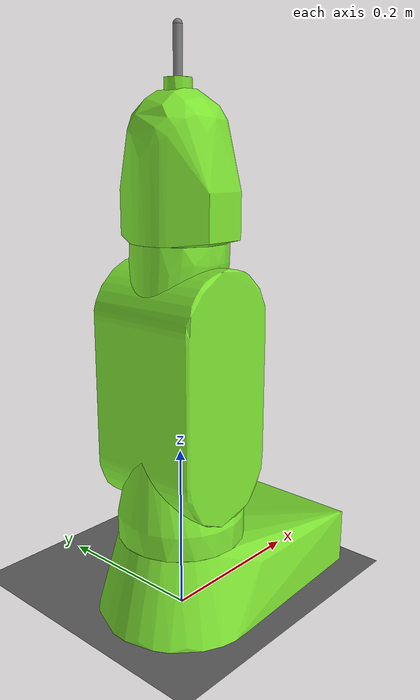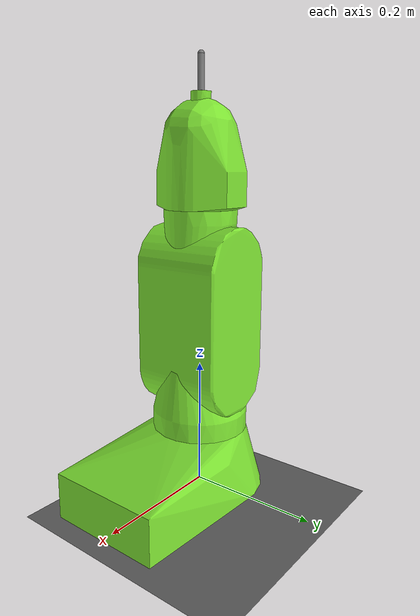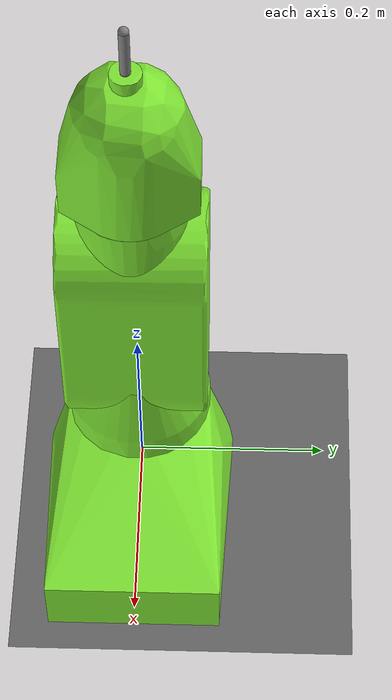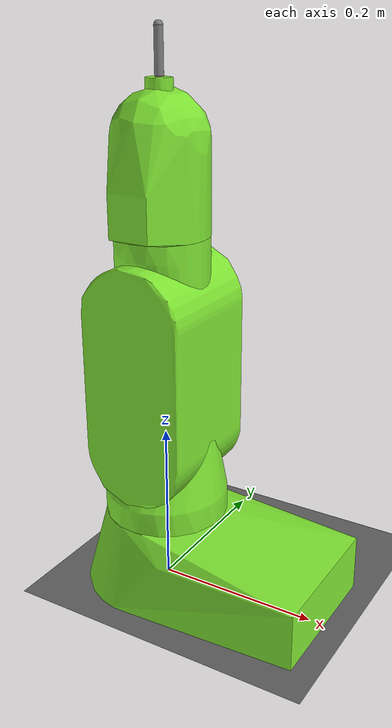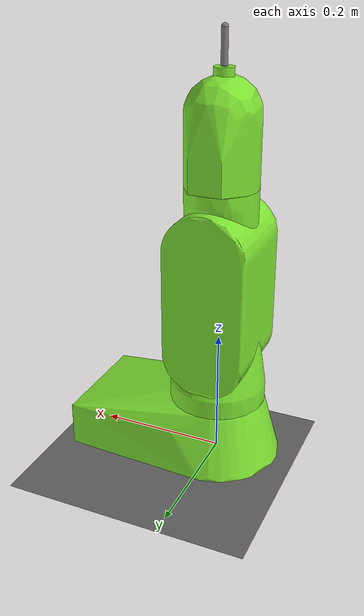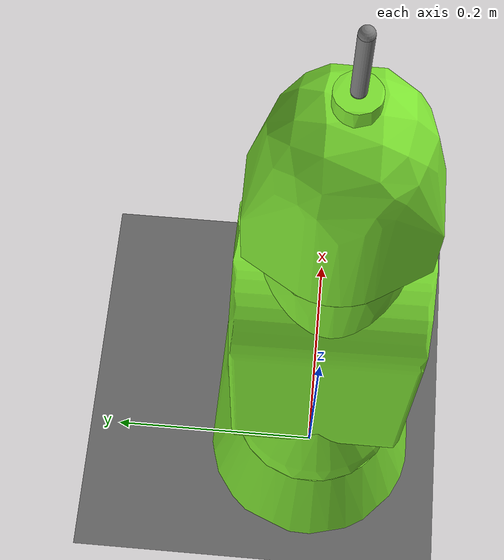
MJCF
<mujoco model="goto_target">
  <include file="thor_robot_collision_only.xml"/>

  <option iterations="10" ls_iterations="10" timestep="0.005" integrator="implicitfast" impratio="5"/>

  <default>
    <default class="stiff">
      <geom solref="0.01 1"/>
    </default>
  </default>

  <worldbody>
    <geom name="ground" type="plane" pos="0 0 0" size="100 100 0.001" quat="1 0 0 0" material="matplane" condim="3" conaffinity="15" />

  </worldbody>

</mujoco>

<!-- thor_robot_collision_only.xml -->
<mujoco model="thor_robot_mjcf">
  <compiler angle="radian" meshdir="meshes" eulerseq="zyx" autolimits="true" />

  <default>
    <joint limited="true" damping="0.01" armature="0.01" frictionloss="0.01" />
    <geom condim="4" contype="1" conaffinity="15" friction="0.9 0.2 0.2" solref="0.001 2" />
    <motor ctrllimited="true" />
    <equality solref="0.001 2" />
    <default class="visualgeom">
      <geom material="visualgeom" condim="1" contype="0" conaffinity="0" />
    </default>
  </default>

  <asset>
    <texture name="texplane" type="2d" builtin="checker" rgb1=".0 .0 .0" rgb2=".8 .8 .8" width="100" height="100" />
    <material name="matplane" reflectance="0." texture="texplane" texrepeat="1 1" texuniform="true" />
    <material name="visualgeom" rgba="0.5 0.9 0.2 1" />

    <!-- Adicionado para deixar meshes simplificados para colisão -->
    <mesh name="art1_3d_convexhull" content_type="model/obj" file="art1_3d_convexhull.obj" scale="0.001 0.001 0.001" />
    <mesh name="art2_3d_convexhull" content_type="model/obj" file="art2_3d_convexhull.obj" />
    <mesh name="art3_3d_convexhull" content_type="model/obj" file="art3_3d_convexhull.obj" />
    <mesh name="art4_3d_convexhull" content_type="model/obj" file="art4_3d_convexhull.obj" />
    <mesh name="art5_3d_convexhull" content_type="model/obj" file="art5_3d_convexhull.obj" />
    <mesh name="art6_3d_convexhull" content_type="model/obj" file="art6_3d_convexhull.obj" />
    <mesh name="base_convexhull" content_type="model/obj" file="base_convexhull.obj" />
  </asset>

  <worldbody>
    <light directional="true" diffuse="0.4 0.4 0.4" specular="0.1 0.1 0.1" pos="0 0 5.0" dir="0 0 -1" castshadow="false" />
    <light directional="true" diffuse="0.6 0.6 0.6" specular="0.2 0.2 0.2" pos="0 0 4" dir="0 0 -1" />
    <camera name="fixed" pos="0 -3.0 0.6272880191508667" xyaxes="1 0 0 0 0 1" fovy="30"/>
    <camera name="track" mode="trackcom" pos="0 -3.0 0.6272880191508667" xyaxes="1 0 0 0 0 1" />
    <body name="thor" pos="0 0 0" quat="1 0 0 0">

      <site name="imu" size="0.01" pos="0 0 0" />
      <geom name="base_collision" type="mesh" mesh="base_convexhull" contype="1" conaffinity="0" density="0" group="1" class="visualgeom" />

      <body name="Art1_3d_link" pos="0 0 0.098">
        <inertial pos="-1e-06 0 0.061834" mass="0.001" diaginertia="1.3e-05 1.3e-05 1e-05" />
        <joint name="junta1" pos="0 0 0" axis="0 0 1" range="-1.57 1.57" />
        <joint name="junta_teste" pos="0 0 0" axis="0 0 1" range="-1.57 1.57" />
        <geom name="Art1_3d_collision" type="mesh" mesh="art1_3d_convexhull" contype="1" conaffinity="0" density="0" group="1" class="visualgeom" />

        <body name="art2_3d_link" pos="0 0 0.098" quat="0.707107 -0.707107 0 0">
          <inertial pos="0 -0.08 0" mass="0.001" diaginertia="1.5e-05 1.3e-05 1e-05" />
          <joint name="junta2" pos="0 0 0" axis="0 0 1" range="-1.57 1.57" />
          <geom name="art2_3d_collision" quat="0.707107 0.707107 0 0" type="mesh" mesh="art2_3d_convexhull" contype="1" conaffinity="0" density="0" group="1" class="visualgeom" />

          <body name="art3_3d_link" pos="0 -0.16 0">
            <inertial pos="0 -0.021415 -1e-06" mass="0.001" diaginertia="1.3e-05 1.3e-05 1e-05" />
            <joint name="junta3" pos="0 0 0" axis="0 0 1" range="-1.57 1.57" />
            <geom name="art3_3d_collision" quat="0.707107 0.707107 0 0" type="mesh" mesh="art3_3d_convexhull" contype="1" conaffinity="0" density="0" group="1" class="visualgeom" />

            <body name="art4_3d_link" pos="0 -0.0885 0" quat="0.707107 0.707107 0 0">
              <inertial pos="0 0 0.060781" mass="0.001" diaginertia="1.3e-05 1.3e-05 1e-05" />
              <joint name="junta4" pos="0 0 0" axis="0 0 1" range="-1.57 1.57" />
              <geom name="art4_3d_collision" type="mesh" mesh="art4_3d_convexhull" contype="1" conaffinity="0" density="0" group="1" class="visualgeom" />

              <body name="art5_3d_link" pos="0 0 0.1045" quat="0.707107 -0.707107 0 0">
                <inertial pos="0 -0.000568 0" quat="0.707107 0 0 0.707107" mass="0.001" diaginertia="1.1e-05 1e-05 1e-05" />
                <joint name="junta5" pos="0 0 0" axis="0 0 1" range="-1.57 1.57" />
                <geom name="art5_3d_collision" quat="0.707107 0.707107 0 0" type="mesh" mesh="art5_3d_convexhull" contype="1" conaffinity="0" density="0" group="1" class="visualgeom" />

                <body name="art6_3d_link" pos="0 -0.05 0" quat="0.707107 0.707107 0 0">
                  <inertial pos="0 0 0.006918" mass="0.001" diaginertia="1e-05 1e-05 1e-05" />
                  <joint name="junta6" pos="0 0 0" axis="0 0 1" range="-1.57 1.57" />
                  <geom name="art6_3d_collision" type="mesh" mesh="art6_3d_convexhull" contype="1" conaffinity="0" density="0" group="1" class="visualgeom" />

                  <!-- Ferramenta adicionada (poderia ser um mesh, mas optei por um clindro), não se encontra no .urdf inicial-->
                  <body name="tool" pos="0 0 0.015">
                    <geom type="cylinder" fromto="0 0 0 0 0 0.05" size="0.005" contype="0" conaffinity="0"/>
                    <site name="tool_base" pos="0 0 0" size="0.005"/>
                    <site name="tool_tip" pos="0 0 0.05" size="0.005"/>
                  </body>
                </body>
              </body>
            </body>
          </body>
        </body>
      </body>
    </body>
  </worldbody>

  <actuator>
    <position name="junta1" joint="junta1" kp="100" kv="10" ctrlrange="-1.57 1.57"/>
    <position name="junta2" joint="junta2" kp="100" kv="10" ctrlrange="-1.57 1.57"/>
    <position name="junta3" joint="junta3" kp="100" kv="10" ctrlrange="-1.57 1.57"/>
    <position name="junta4" joint="junta4" kp="100" kv="10" ctrlrange="-1.57 1.57"/>
    <position name="junta5" joint="junta5" kp="100" kv="10" ctrlrange="-1.57 1.57"/>
    <position name="junta6" joint="junta6" kp="100" kv="10" ctrlrange="-1.57 1.57"/>
  </actuator>

  <sensor>
    <actuatorpos name="junta1_p" actuator="junta1" />
    <actuatorvel name="junta1_v" actuator="junta1" />
    <actuatorfrc name="junta1_f" actuator="junta1" noise="0.001" />
    <actuatorpos name="junta2_p" actuator="junta2" />
    <actuatorvel name="junta2_v" actuator="junta2" />
    <actuatorfrc name="junta2_f" actuator="junta2" noise="0.001" />
    <actuatorpos name="junta3_p" actuator="junta3" />
    <actuatorvel name="junta3_v" actuator="junta3" />
    <actuatorfrc name="junta3_f" actuator="junta3" noise="0.001" />
    <actuatorpos name="junta4_p" actuator="junta4" />
    <actuatorvel name="junta4_v" actuator="junta4" />
    <actuatorfrc name="junta4_f" actuator="junta4" noise="0.001" />
    <actuatorpos name="junta5_p" actuator="junta5" />
    <actuatorvel name="junta5_v" actuator="junta5" />
    <actuatorfrc name="junta5_f" actuator="junta5" noise="0.001" />
    <actuatorpos name="junta6_p" actuator="junta6" />
    <actuatorvel name="junta6_v" actuator="junta6" />
    <actuatorfrc name="junta6_f" actuator="junta6" noise="0.001" />
    <framequat name="orientation" objtype="site" noise="0.001" objname="imu" />
    <gyro name="angular-velocity" site="imu" noise="0.005" cutoff="34.9" />

    <!-- sensores adicionados para facilitar a medida de velocidade da ferramenta -->
    <velocimeter site="tool_tip" name="local_linvel"/>
    <accelerometer site="tool_tip" name="accelerometer"/>
    <framezaxis objtype="site" objname="tool_tip" name="upvector"/>
    <framelinvel objtype="site" objname="tool_tip" name="global_linvel"/>
    <frameangvel objtype="site" objname="tool_tip" name="global_angvel"/>
    <framepos objtype="site" objname="tool_tip" name="tool_position"/>
    <framequat objtype="site" objname="tool_tip" name="tool_orientation"/>
  </sensor>
</mujoco>
